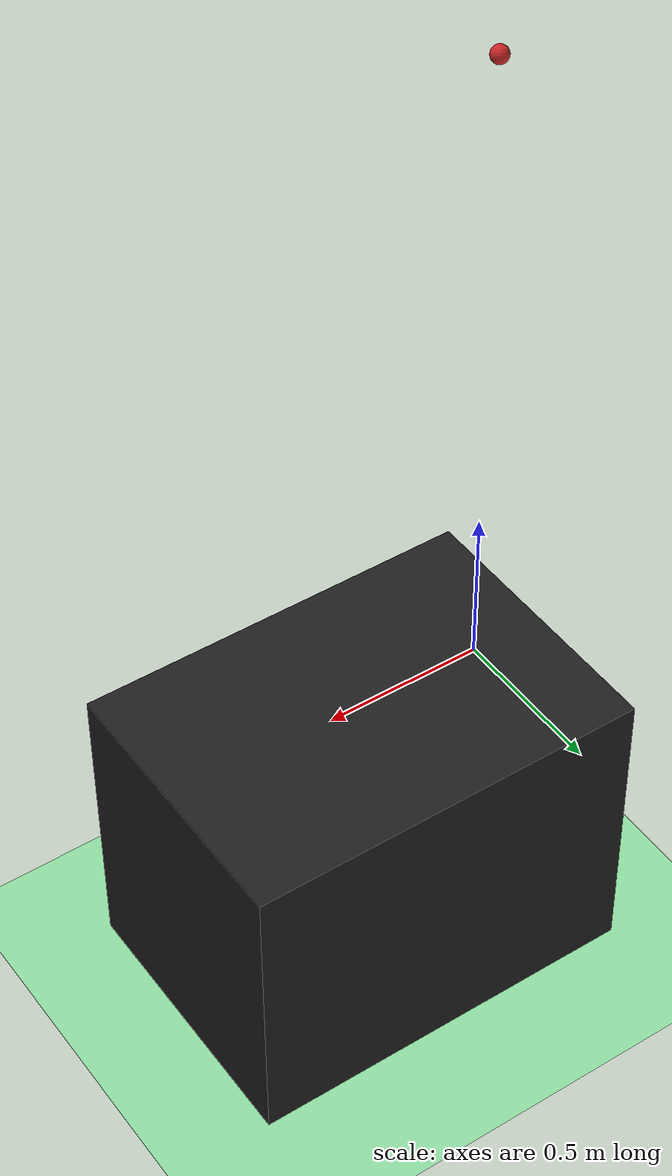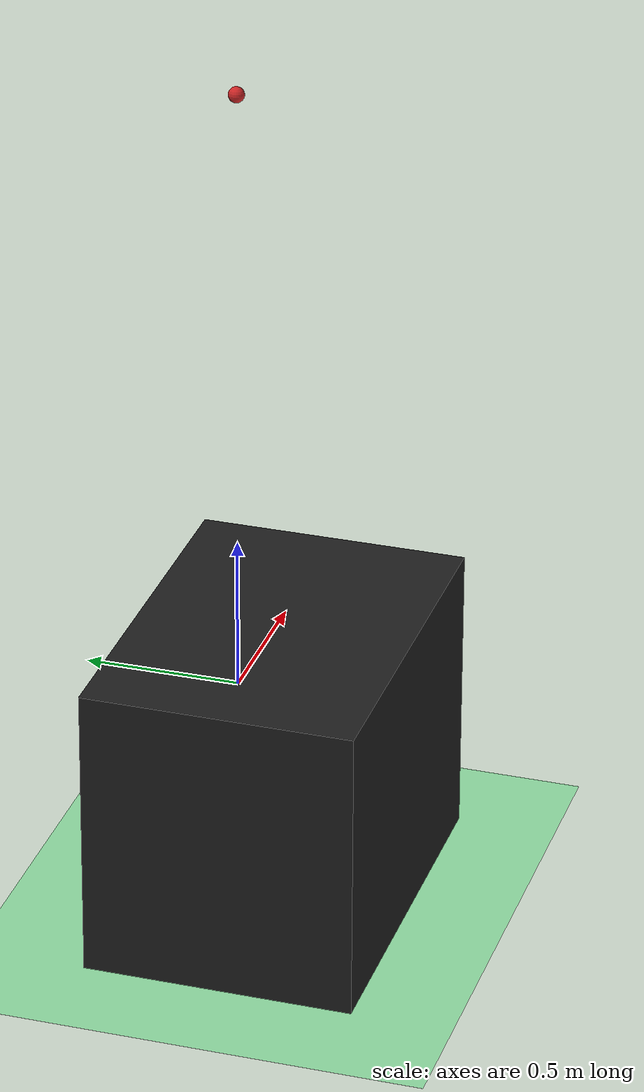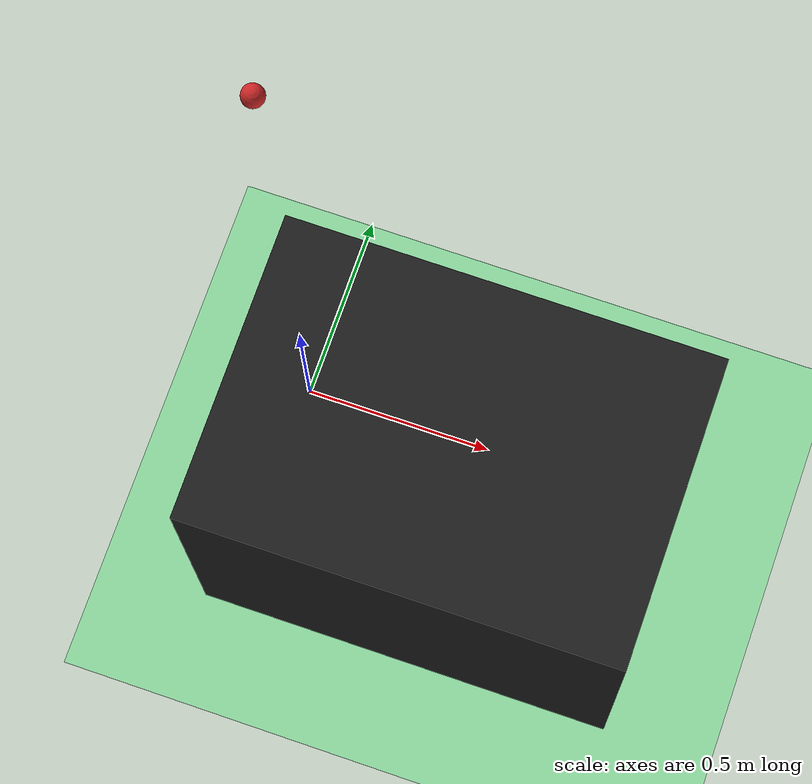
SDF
<?xml version="1.0" ?>
<sdf version="1.5">
  <world name="default">
    <!-- A global light source -->
    <include>
      <uri>model://sun</uri>
    </include>
    <!-- A ground plane -->
    <include>
      <uri>model://green_ground</uri>
      <pose>0 0 -1 0 0 0</pose> <!-- lower so we can see the table -->
    </include>
    <!-- Sphere D 50mm -->
    <include>
      <uri>model://sphere50_no_collision</uri>
      <pose>0 0.0 2.0 0 0 0</pose>
    </include>
    <!-- Isaac demo table cuboid-->
    <include>
      <uri>model://isaac_demotable_cuboid</uri>
      <pose>0 0 0 0 0 0</pose> <!-- note that this table has its origin at the intended robot mounting point-->
    </include>
    <physics type = "ode">
        <max_step_size>0.001</max_step_size>
        <real_time_factor>1</real_time_factor>
        <real_time_update_rate>1000</real_time_update_rate>
    </physics>
	<gravity>
      0.0 0.0 0.0
    </gravity>
  </world>
</sdf>

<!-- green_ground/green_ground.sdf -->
<sdf version="1.5">
  <model name="green_ground">
    <static>true</static>
    <link name="link">
      <collision name="collision">
        <geometry>
          <plane>
            <normal>0 0 1</normal>
            <size>100 100</size>
          </plane>
        </geometry>
        <surface>
          <friction>
            <ode>
              <mu>100</mu>
              <mu2>50</mu2>
            </ode>
          </friction>
        </surface>
      </collision>
      <visual name="visual">
        <geometry>
          <plane>
            <normal>0 0 1</normal>
            <size>100 100</size>
          </plane>
        </geometry>
        <material>
          <ambient>0.56 0.86 0.63 1</ambient>
          <diffuse>0.56 0.86 0.63 1</diffuse>
        </material>
      </visual>
    </link>
  </model>
</sdf>

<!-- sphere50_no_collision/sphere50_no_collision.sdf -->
<sdf version="1.5">
  <model name="sphere50_no_collision">
    <link name="link">
      <pose>0 0 0.0 0 0 0</pose>
      <inertial>
        <mass>1.0</mass>
        <inertia>
          <ixx>0.27</ixx>
          <ixy>0</ixy>
          <ixz>0</ixz>
          <iyy>0.27</iyy>
          <iyz>0</iyz>
          <izz>0.27</izz>
        </inertia>
      </inertial>
      <self_collide>0</self_collide>
      <kinematic>0</kinematic>
      <gravity>0</gravity>

      <visual name="visual">
        <geometry>
          <sphere>
            <radius>0.025</radius>
          </sphere>
        </geometry>
        <material>
          <script>
            <uri>file://media/materials/scripts/gazebo.material</uri>
            <name>Gazebo/Red</name>
          </script>
        </material>
      </visual>

    </link>
  </model>
</sdf>

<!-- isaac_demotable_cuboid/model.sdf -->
<sdf version="1.5">
  <model name='isaac_demotable_cuboid'>
    <static>true</static>
    <link name="link">
      <pose>0 0 0.0 0 0 0</pose>
      <inertial>
        <mass>1.0</mass>
        <inertia>
          <ixx>0.27</ixx>
          <ixy>0</ixy>
          <ixz>0</ixz>
          <iyy>0.27</iyy>
          <iyz>0</iyz>
          <izz>0.27</izz>
        </inertia>
      </inertial>
      <self_collide>0</self_collide>
      <kinematic>1</kinematic>
      <gravity>0</gravity>

      <collision name="collision">
        <pose>.4 0 -.5 0 0 0</pose>
        <geometry>
          <box>
            <size>1.27 .9 1</size>
          </box>
        </geometry>
        <surface>
          <contact>
            <collide_without_contact>1</collide_without_contact>
          </contact>
        </surface>
      </collision>

      <visual name="visual">
        <pose>.4 0 -.4999 0 0 0</pose> <!-- actually z -.5, but differ a bit to avoid z fighting with ground plane in default pose-->
        <geometry>
          <box>
            <size>1.27 .9 1</size>
          </box>
        </geometry>
        <material>
          <script>
            <uri>file://media/materials/scripts/gazebo.material</uri>
            <name>Gazebo/Black</name>
          </script>
        </material>
      </visual>

    </link>
  </model>
</sdf>
